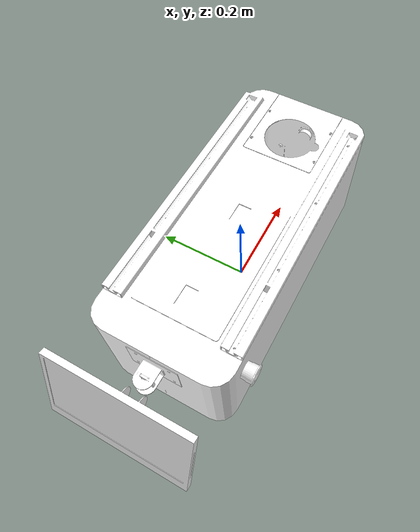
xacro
<?xml version="1.0" encoding="utf-8"?>
<robot name="scout_base" xmlns:xacro="http://ros.org/wiki/xacro">
  <link
    name="box_link">
    <inertial>
      <origin
        xyz="0.017247 -0.0057664 0.13638"
        rpy="0 0 0" />
      <mass
        value="2.1688" />
      <inertia
        ixx="0.019403"
        ixy="-1.1237E-05"
        ixz="-0.00039599"
        iyy="0.066236"
        iyz="5.3962E-07"
        izz="0.078079" />
    </inertial>
    <visual>
      <origin
        xyz="0 0 0"
        rpy="0 0 0" />
      <geometry>
        <mesh
          filename="package://scout_cr5_description/scout_meshes/base_link.STL" />
      </geometry>
      <material
        name="">
        <color
          rgba="1 1 1 1" />
      </material>
    </visual>
    <collision>
      <origin
        xyz="0 0 0.12"
        rpy="0 0 0" />
      <geometry>
      <box size="0.650 0.270 0.250" />
      </geometry>
    </collision>
  </link>

  <link
    name="laser_Link">
    <inertial>
      <origin
        xyz="-0.00029458 -1.102E-05 0.035775"
        rpy="0 0 0" />
      <mass
        value="0.58508" />
      <inertia
        ixx="0.00062907"
        ixy="-3.4247E-08"
        ixz="6.994E-08"
        iyy="0.00063026"
        iyz="-4.8147E-08"
        izz="0.00074925" />
    </inertial>
    <visual>
      <origin
        xyz="0 0 0"
        rpy="0 0 0" />
      <geometry>
        <mesh
          filename="package://scout_cr5_description/scout_meshes/laser_Link.STL" />
      </geometry>
      <material
        name="">
        <color
          rgba="1 1 1 1" />
      </material>
    </visual>
    <collision>
      <origin
        xyz="0 0 0.04"
        rpy="0 0 0" />
      <geometry>
        <cylinder length="0.09" radius="0.05"/>
      </geometry>
    </collision>
  </link>

  <joint
    name="laser_joint"
    type="fixed">
    <origin
      xyz="0.37655 2.1023E-05 0.003"
      rpy="0 0 0" />
    <parent
      link="box_link" />
    <child
      link="laser_Link" />
    <axis
      xyz="0 0 0" />
  </joint>

  <link
    name="display_Link">
    <inertial>
      <origin
        xyz="0.0013019 -6.9629E-05 0.00060167"
        rpy="0 0 0" />
      <mass
        value="0.58424" />
      <inertia
        ixx="0.0047864"
        ixy="1.6495E-08"
        ixz="1.4213E-06"
        iyy="0.0014088"
        iyz="8.2645E-08"
        izz="0.0034011" />
    </inertial>
    <visual>
      <origin
        xyz="0 0 0"
        rpy="0 0 0" />
      <geometry>
        <mesh
          filename="package://scout_cr5_description/scout_meshes/display_Link.STL" />
      </geometry>
      <material
        name="">
        <color
          rgba="1 1 1 1" />
      </material>
    </visual>
    <collision>
      <origin
        xyz="0 0 0"
        rpy="0 0 0" />
      <geometry>
        <mesh
          filename="package://scout_cr5_description/scout_meshes/display_Link.STL" />
      </geometry>
    </collision>
  </link>

  <joint
    name="display_joint"
    type="fixed">
    <origin
      xyz="-0.40294 -0.00097898 0.18999"
      rpy="0 -0.28807 3.1416" />
    <parent
      link="box_link" />
    <child
      link="display_Link" />
    <axis
      xyz="0 0 0" />
  </joint>
</robot>
